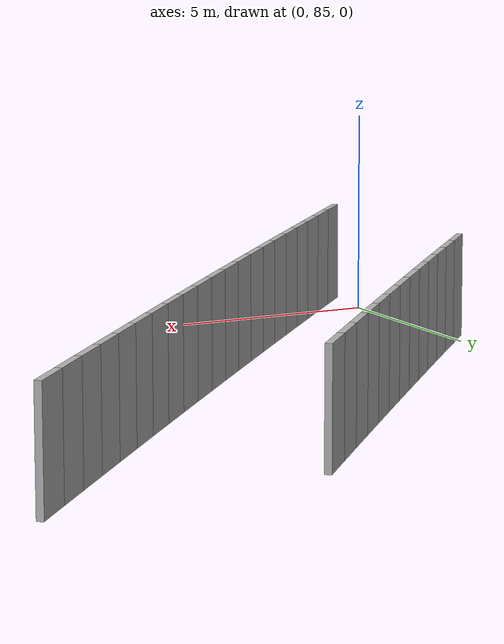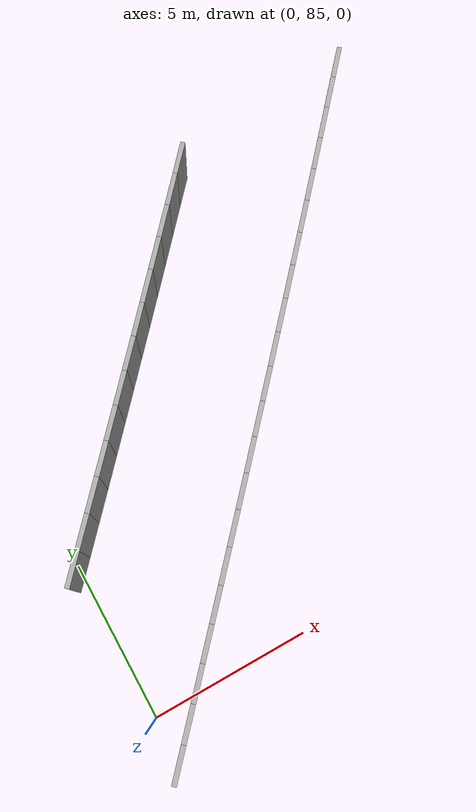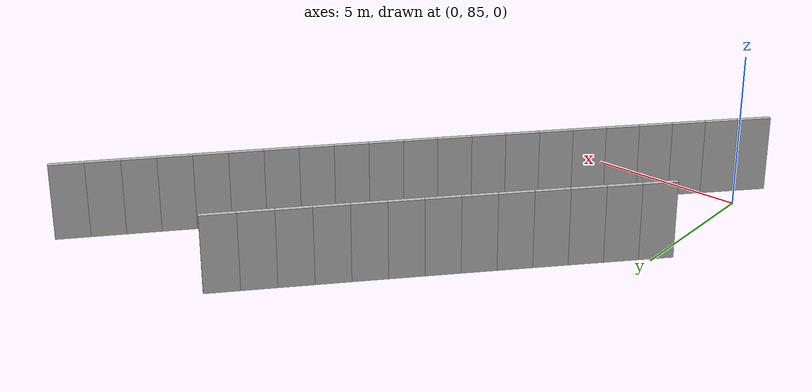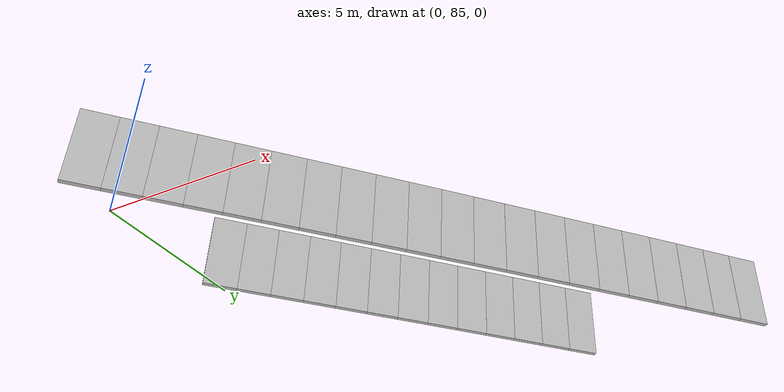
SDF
<?xml version="1.0" ?>
<sdf version="1.6">
  <model name="sps_2004">
    <pose frame="">0 0 0 0 -0 0</pose>
    <static>1</static>
    <self_collide>0</self_collide>
    <allow_auto_disable>0</allow_auto_disable>
    <link name="Wall3430">
      <kinematic>0</kinematic>
      <gravity>1</gravity>
      <self_collide>0</self_collide>
      <collision name="collision">
        <geometry>
          <box>
            <size>1.07602 0.15 2.5</size>
          </box>
        </geometry>
        <pose frame="">0 0 0 0 -0 0</pose>
      </collision>
      <visual name="visual">
        <geometry>
          <box>
            <size>1.07602 0.15 2.5</size>
          </box>
        </geometry>
        <pose frame="">0 0 0 0 -0 0</pose>
        <cast_shadows>1</cast_shadows>
        <transparency>0.0</transparency>
      </visual>
      <pose frame="">0.0122292 89.7161 1.25 0 -0 0.832745</pose>
    </link>
    <link name="Wall3431">
      <kinematic>0</kinematic>
      <gravity>1</gravity>
      <self_collide>0</self_collide>
      <collision name="collision">
        <geometry>
          <box>
            <size>1.07595 0.15 2.5</size>
          </box>
        </geometry>
        <pose frame="">0 0 0 0 -0 0</pose>
      </collision>
      <visual name="visual">
        <geometry>
          <box>
            <size>1.07595 0.15 2.5</size>
          </box>
        </geometry>
        <pose frame="">0 0 0 0 -0 0</pose>
        <cast_shadows>1</cast_shadows>
        <transparency>0.0</transparency>
      </visual>
      <pose frame="">0.73574 90.5125 1.25 0 -0 0.833912</pose>
    </link>
    <link name="Wall3432">
      <kinematic>0</kinematic>
      <gravity>1</gravity>
      <self_collide>0</self_collide>
      <collision name="collision">
        <geometry>
          <box>
            <size>1.07601 0.15 2.5</size>
          </box>
        </geometry>
        <pose frame="">0 0 0 0 -0 0</pose>
      </collision>
      <visual name="visual">
        <geometry>
          <box>
            <size>1.07601 0.15 2.5</size>
          </box>
        </geometry>
        <pose frame="">0 0 0 0 -0 0</pose>
        <cast_shadows>1</cast_shadows>
        <transparency>0.0</transparency>
      </visual>
      <pose frame="">1.45837 91.3097 1.25 0 -0 0.834954</pose>
    </link>
    <link name="Wall3433">
      <kinematic>0</kinematic>
      <gravity>1</gravity>
      <self_collide>0</self_collide>
      <collision name="collision">
        <geometry>
          <box>
            <size>1.07602 0.15 2.5</size>
          </box>
        </geometry>
        <pose frame="">0 0 0 0 -0 0</pose>
      </collision>
      <visual name="visual">
        <geometry>
          <box>
            <size>1.07602 0.15 2.5</size>
          </box>
        </geometry>
        <pose frame="">0 0 0 0 -0 0</pose>
        <cast_shadows>1</cast_shadows>
        <transparency>0.0</transparency>
      </visual>
      <pose frame="">2.18017 92.1077 1.25 0 -0 0.836038</pose>
    </link>
    <link name="Wall3434">
      <kinematic>0</kinematic>
      <gravity>1</gravity>
      <self_collide>0</self_collide>
      <collision name="collision">
        <geometry>
          <box>
            <size>1.07584 0.15 2.5</size>
          </box>
        </geometry>
        <pose frame="">0 0 0 0 -0 0</pose>
      </collision>
      <visual name="visual">
        <geometry>
          <box>
            <size>1.07584 0.15 2.5</size>
          </box>
        </geometry>
        <pose frame="">0 0 0 0 -0 0</pose>
        <cast_shadows>1</cast_shadows>
        <transparency>0.0</transparency>
      </visual>
      <pose frame="">2.90096 92.9065 1.25 0 -0 0.837332</pose>
    </link>
    <link name="Wall3435">
      <kinematic>0</kinematic>
      <gravity>1</gravity>
      <self_collide>0</self_collide>
      <collision name="collision">
        <geometry>
          <box>
            <size>1.07585 0.15 2.5</size>
          </box>
        </geometry>
        <pose frame="">0 0 0 0 -0 0</pose>
      </collision>
      <visual name="visual">
        <geometry>
          <box>
            <size>1.07585 0.15 2.5</size>
          </box>
        </geometry>
        <pose frame="">0 0 0 0 -0 0</pose>
        <cast_shadows>1</cast_shadows>
        <transparency>0.0</transparency>
      </visual>
      <pose frame="">3.62075 93.7061 1.25 0 -0 0.838416</pose>
    </link>
    <link name="Wall3436">
      <kinematic>0</kinematic>
      <gravity>1</gravity>
      <self_collide>0</self_collide>
      <collision name="collision">
        <geometry>
          <box>
            <size>1.07614 0.15 2.5</size>
          </box>
        </geometry>
        <pose frame="">0 0 0 0 -0 0</pose>
      </collision>
      <visual name="visual">
        <geometry>
          <box>
            <size>1.07614 0.15 2.5</size>
          </box>
        </geometry>
        <pose frame="">0 0 0 0 -0 0</pose>
        <cast_shadows>1</cast_shadows>
        <transparency>0.0</transparency>
      </visual>
      <pose frame="">4.33974 94.5066 1.25 0 -0 0.839566</pose>
    </link>
    <link name="Wall3437">
      <kinematic>0</kinematic>
      <gravity>1</gravity>
      <self_collide>0</self_collide>
      <collision name="collision">
        <geometry>
          <box>
            <size>1.07599 0.15 2.5</size>
          </box>
        </geometry>
        <pose frame="">0 0 0 0 -0 0</pose>
      </collision>
      <visual name="visual">
        <geometry>
          <box>
            <size>1.07599 0.15 2.5</size>
          </box>
        </geometry>
        <pose frame="">0 0 0 0 -0 0</pose>
        <cast_shadows>1</cast_shadows>
        <transparency>0.0</transparency>
      </visual>
      <pose frame="">5.05785 95.308 1.25 0 -0 0.840739</pose>
    </link>
    <link name="Wall3438">
      <kinematic>0</kinematic>
      <gravity>1</gravity>
      <self_collide>0</self_collide>
      <collision name="collision">
        <geometry>
          <box>
            <size>1.07558 0.15 2.5</size>
          </box>
        </geometry>
        <pose frame="">0 0 0 0 -0 0</pose>
      </collision>
      <visual name="visual">
        <geometry>
          <box>
            <size>1.07558 0.15 2.5</size>
          </box>
        </geometry>
        <pose frame="">0 0 0 0 -0 0</pose>
        <cast_shadows>1</cast_shadows>
        <transparency>0.0</transparency>
      </visual>
      <pose frame="">5.77486 96.11 1.25 0 -0 0.841845</pose>
    </link>
    <link name="Wall3439">
      <kinematic>0</kinematic>
      <gravity>1</gravity>
      <self_collide>0</self_collide>
      <collision name="collision">
        <geometry>
          <box>
            <size>1.07595 0.15 2.5</size>
          </box>
        </geometry>
        <pose frame="">0 0 0 0 -0 0</pose>
      </collision>
      <visual name="visual">
        <geometry>
          <box>
            <size>1.07595 0.15 2.5</size>
          </box>
        </geometry>
        <pose frame="">0 0 0 0 -0 0</pose>
        <cast_shadows>1</cast_shadows>
        <transparency>0.0</transparency>
      </visual>
      <pose frame="">6.49096 96.9128 1.25 0 -0 0.84299</pose>
    </link>
    <link name="Wall3440">
      <kinematic>0</kinematic>
      <gravity>1</gravity>
      <self_collide>0</self_collide>
      <collision name="collision">
        <geometry>
          <box>
            <size>1.07598 0.15 2.5</size>
          </box>
        </geometry>
        <pose frame="">0 0 0 0 -0 0</pose>
      </collision>
      <visual name="visual">
        <geometry>
          <box>
            <size>1.07598 0.15 2.5</size>
          </box>
        </geometry>
        <pose frame="">0 0 0 0 -0 0</pose>
        <cast_shadows>1</cast_shadows>
        <transparency>0.0</transparency>
      </visual>
      <pose frame="">7.20626 97.7166 1.25 0 -0 0.844154</pose>
    </link>
    <link name="Wall3441">
      <kinematic>0</kinematic>
      <gravity>1</gravity>
      <self_collide>0</self_collide>
      <collision name="collision">
        <geometry>
          <box>
            <size>1.07587 0.15 2.5</size>
          </box>
        </geometry>
        <pose frame="">0 0 0 0 -0 0</pose>
      </collision>
      <visual name="visual">
        <geometry>
          <box>
            <size>1.07587 0.15 2.5</size>
          </box>
        </geometry>
        <pose frame="">0 0 0 0 -0 0</pose>
        <cast_shadows>1</cast_shadows>
        <transparency>0.0</transparency>
      </visual>
      <pose frame="">7.92068 98.5211 1.25 0 -0 0.845125</pose>
    </link>
    <link name="Wall3442">
      <kinematic>0</kinematic>
      <gravity>1</gravity>
      <self_collide>0</self_collide>
      <collision name="collision">
        <geometry>
          <box>
            <size>1.07612 0.15 2.5</size>
          </box>
        </geometry>
        <pose frame="">0 0 0 0 -0 0</pose>
      </collision>
      <visual name="visual">
        <geometry>
          <box>
            <size>1.07612 0.15 2.5</size>
          </box>
        </geometry>
        <pose frame="">0 0 0 0 -0 0</pose>
        <cast_shadows>1</cast_shadows>
        <transparency>0.0</transparency>
      </visual>
      <pose frame="">8.63427 99.3264 1.25 0 -0 0.846316</pose>
    </link>
    <link name="Wall4228">
      <kinematic>0</kinematic>
      <gravity>1</gravity>
      <self_collide>0</self_collide>
      <collision name="collision">
        <geometry>
          <box>
            <size>1.08089 0.15 2.5</size>
          </box>
        </geometry>
        <pose frame="">0 0 0 0 -0 0</pose>
      </collision>
      <visual name="visual">
        <geometry>
          <box>
            <size>1.08089 0.15 2.5</size>
          </box>
        </geometry>
        <pose frame="">0 0 0 0 -0 0</pose>
        <cast_shadows>1</cast_shadows>
        <transparency>0.0</transparency>
      </visual>
      <pose frame="">0.158744 83.7386 1.25 0 -0 0.828055</pose>
    </link>
    <link name="Wall4229">
      <kinematic>0</kinematic>
      <gravity>1</gravity>
      <self_collide>0</self_collide>
      <collision name="collision">
        <geometry>
          <box>
            <size>1.08065 0.15 2.5</size>
          </box>
        </geometry>
        <pose frame="">0 0 0 0 -0 0</pose>
      </collision>
      <visual name="visual">
        <geometry>
          <box>
            <size>1.08065 0.15 2.5</size>
          </box>
        </geometry>
        <pose frame="">0 0 0 0 -0 0</pose>
        <cast_shadows>1</cast_shadows>
        <transparency>0.0</transparency>
      </visual>
      <pose frame="">0.889152 84.5352 1.25 0 -0 0.829383</pose>
    </link>
    <link name="Wall4230">
      <kinematic>0</kinematic>
      <gravity>1</gravity>
      <self_collide>0</self_collide>
      <collision name="collision">
        <geometry>
          <box>
            <size>1.08075 0.15 2.5</size>
          </box>
        </geometry>
        <pose frame="">0 0 0 0 -0 0</pose>
      </collision>
      <visual name="visual">
        <geometry>
          <box>
            <size>1.08075 0.15 2.5</size>
          </box>
        </geometry>
        <pose frame="">0 0 0 0 -0 0</pose>
        <cast_shadows>1</cast_shadows>
        <transparency>0.0</transparency>
      </visual>
      <pose frame="">1.61855 85.3326 1.25 0 -0 0.830459</pose>
    </link>
    <link name="Wall4231">
      <kinematic>0</kinematic>
      <gravity>1</gravity>
      <self_collide>0</self_collide>
      <collision name="collision">
        <geometry>
          <box>
            <size>1.08075 0.15 2.5</size>
          </box>
        </geometry>
        <pose frame="">0 0 0 0 -0 0</pose>
      </collision>
      <visual name="visual">
        <geometry>
          <box>
            <size>1.08075 0.15 2.5</size>
          </box>
        </geometry>
        <pose frame="">0 0 0 0 -0 0</pose>
        <cast_shadows>1</cast_shadows>
        <transparency>0.0</transparency>
      </visual>
      <pose frame="">2.34716 86.1308 1.25 0 -0 0.831458</pose>
    </link>
    <link name="Wall4232">
      <kinematic>0</kinematic>
      <gravity>1</gravity>
      <self_collide>0</self_collide>
      <collision name="collision">
        <geometry>
          <box>
            <size>1.08064 0.15 2.5</size>
          </box>
        </geometry>
        <pose frame="">0 0 0 0 -0 0</pose>
      </collision>
      <visual name="visual">
        <geometry>
          <box>
            <size>1.08064 0.15 2.5</size>
          </box>
        </geometry>
        <pose frame="">0 0 0 0 -0 0</pose>
        <cast_shadows>1</cast_shadows>
        <transparency>0.0</transparency>
      </visual>
      <pose frame="">3.07485 86.9298 1.25 0 -0 0.832662</pose>
    </link>
    <link name="Wall4233">
      <kinematic>0</kinematic>
      <gravity>1</gravity>
      <self_collide>0</self_collide>
      <collision name="collision">
        <geometry>
          <box>
            <size>1.08062 0.15 2.5</size>
          </box>
        </geometry>
        <pose frame="">0 0 0 0 -0 0</pose>
      </collision>
      <visual name="visual">
        <geometry>
          <box>
            <size>1.08062 0.15 2.5</size>
          </box>
        </geometry>
        <pose frame="">0 0 0 0 -0 0</pose>
        <cast_shadows>1</cast_shadows>
        <transparency>0.0</transparency>
      </visual>
      <pose frame="">3.80154 87.7296 1.25 0 -0 0.833863</pose>
    </link>
    <link name="Wall4234">
      <kinematic>0</kinematic>
      <gravity>1</gravity>
      <self_collide>0</self_collide>
      <collision name="collision">
        <geometry>
          <box>
            <size>1.08081 0.15 2.5</size>
          </box>
        </geometry>
        <pose frame="">0 0 0 0 -0 0</pose>
      </collision>
      <visual name="visual">
        <geometry>
          <box>
            <size>1.08081 0.15 2.5</size>
          </box>
        </geometry>
        <pose frame="">0 0 0 0 -0 0</pose>
        <cast_shadows>1</cast_shadows>
        <transparency>0.0</transparency>
      </visual>
      <pose frame="">4.52734 88.5303 1.25 0 -0 0.835014</pose>
    </link>
    <link name="Wall4235">
      <kinematic>0</kinematic>
      <gravity>1</gravity>
      <self_collide>0</self_collide>
      <collision name="collision">
        <geometry>
          <box>
            <size>1.08082 0.15 2.5</size>
          </box>
        </geometry>
        <pose frame="">0 0 0 0 -0 0</pose>
      </collision>
      <visual name="visual">
        <geometry>
          <box>
            <size>1.08082 0.15 2.5</size>
          </box>
        </geometry>
        <pose frame="">0 0 0 0 -0 0</pose>
        <cast_shadows>1</cast_shadows>
        <transparency>0.0</transparency>
      </visual>
      <pose frame="">5.25234 89.3319 1.25 0 -0 0.836013</pose>
    </link>
    <link name="Wall4236">
      <kinematic>0</kinematic>
      <gravity>1</gravity>
      <self_collide>0</self_collide>
      <collision name="collision">
        <geometry>
          <box>
            <size>1.08068 0.15 2.5</size>
          </box>
        </geometry>
        <pose frame="">0 0 0 0 -0 0</pose>
      </collision>
      <visual name="visual">
        <geometry>
          <box>
            <size>1.08068 0.15 2.5</size>
          </box>
        </geometry>
        <pose frame="">0 0 0 0 -0 0</pose>
        <cast_shadows>1</cast_shadows>
        <transparency>0.0</transparency>
      </visual>
      <pose frame="">5.97634 90.1343 1.25 0 -0 0.837419</pose>
    </link>
    <link name="Wall4237">
      <kinematic>0</kinematic>
      <gravity>1</gravity>
      <self_collide>0</self_collide>
      <collision name="collision">
        <geometry>
          <box>
            <size>1.08069 0.15 2.5</size>
          </box>
        </geometry>
        <pose frame="">0 0 0 0 -0 0</pose>
      </collision>
      <visual name="visual">
        <geometry>
          <box>
            <size>1.08069 0.15 2.5</size>
          </box>
        </geometry>
        <pose frame="">0 0 0 0 -0 0</pose>
        <cast_shadows>1</cast_shadows>
        <transparency>0.0</transparency>
      </visual>
      <pose frame="">6.69933 90.9375 1.25 0 -0 0.838418</pose>
    </link>
    <link name="Wall4238">
      <kinematic>0</kinematic>
      <gravity>1</gravity>
      <self_collide>0</self_collide>
      <collision name="collision">
        <geometry>
          <box>
            <size>1.08089 0.15 2.5</size>
          </box>
        </geometry>
        <pose frame="">0 0 0 0 -0 0</pose>
      </collision>
      <visual name="visual">
        <geometry>
          <box>
            <size>1.08089 0.15 2.5</size>
          </box>
        </geometry>
        <pose frame="">0 0 0 0 -0 0</pose>
        <cast_shadows>1</cast_shadows>
        <transparency>0.0</transparency>
      </visual>
      <pose frame="">7.42153 91.7416 1.25 0 -0 0.839568</pose>
    </link>
    <link name="Wall4239">
      <kinematic>0</kinematic>
      <gravity>1</gravity>
      <self_collide>0</self_collide>
      <collision name="collision">
        <geometry>
          <box>
            <size>1.08074 0.15 2.5</size>
          </box>
        </geometry>
        <pose frame="">0 0 0 0 -0 0</pose>
      </collision>
      <visual name="visual">
        <geometry>
          <box>
            <size>1.08074 0.15 2.5</size>
          </box>
        </geometry>
        <pose frame="">0 0 0 0 -0 0</pose>
        <cast_shadows>1</cast_shadows>
        <transparency>0.0</transparency>
      </visual>
      <pose frame="">8.14284 92.5465 1.25 0 -0 0.840655</pose>
    </link>
    <link name="Wall4240">
      <kinematic>0</kinematic>
      <gravity>1</gravity>
      <self_collide>0</self_collide>
      <collision name="collision">
        <geometry>
          <box>
            <size>1.08059 0.15 2.5</size>
          </box>
        </geometry>
        <pose frame="">0 0 0 0 -0 0</pose>
      </collision>
      <visual name="visual">
        <geometry>
          <box>
            <size>1.08059 0.15 2.5</size>
          </box>
        </geometry>
        <pose frame="">0 0 0 0 -0 0</pose>
        <cast_shadows>1</cast_shadows>
        <transparency>0.0</transparency>
      </visual>
      <pose frame="">8.86315 93.3521 1.25 0 -0 0.841823</pose>
    </link>
    <link name="Wall4241">
      <kinematic>0</kinematic>
      <gravity>1</gravity>
      <self_collide>0</self_collide>
      <collision name="collision">
        <geometry>
          <box>
            <size>1.0807 0.15 2.5</size>
          </box>
        </geometry>
        <pose frame="">0 0 0 0 -0 0</pose>
      </collision>
      <visual name="visual">
        <geometry>
          <box>
            <size>1.0807 0.15 2.5</size>
          </box>
        </geometry>
        <pose frame="">0 0 0 0 -0 0</pose>
        <cast_shadows>1</cast_shadows>
        <transparency>0.0</transparency>
      </visual>
      <pose frame="">9.58254 94.1585 1.25 0 -0 0.842897</pose>
    </link>
    <link name="Wall4242">
      <kinematic>0</kinematic>
      <gravity>1</gravity>
      <self_collide>0</self_collide>
      <collision name="collision">
        <geometry>
          <box>
            <size>1.0809 0.15 2.5</size>
          </box>
        </geometry>
        <pose frame="">0 0 0 0 -0 0</pose>
      </collision>
      <visual name="visual">
        <geometry>
          <box>
            <size>1.0809 0.15 2.5</size>
          </box>
        </geometry>
        <pose frame="">0 0 0 0 -0 0</pose>
        <cast_shadows>1</cast_shadows>
        <transparency>0.0</transparency>
      </visual>
      <pose frame="">10.3011 94.9658 1.25 0 -0 0.844046</pose>
    </link>
    <link name="Wall4243">
      <kinematic>0</kinematic>
      <gravity>1</gravity>
      <self_collide>0</self_collide>
      <collision name="collision">
        <geometry>
          <box>
            <size>1.08025 0.15 2.5</size>
          </box>
        </geometry>
        <pose frame="">0 0 0 0 -0 0</pose>
      </collision>
      <visual name="visual">
        <geometry>
          <box>
            <size>1.08025 0.15 2.5</size>
          </box>
        </geometry>
        <pose frame="">0 0 0 0 -0 0</pose>
        <cast_shadows>1</cast_shadows>
        <transparency>0.0</transparency>
      </visual>
      <pose frame="">11.0186 95.7738 1.25 0 -0 0.845243</pose>
    </link>
    <link name="Wall4244">
      <kinematic>0</kinematic>
      <gravity>1</gravity>
      <self_collide>0</self_collide>
      <collision name="collision">
        <geometry>
          <box>
            <size>1.08068 0.15 2.5</size>
          </box>
        </geometry>
        <pose frame="">0 0 0 0 -0 0</pose>
      </collision>
      <visual name="visual">
        <geometry>
          <box>
            <size>1.08068 0.15 2.5</size>
          </box>
        </geometry>
        <pose frame="">0 0 0 0 -0 0</pose>
        <cast_shadows>1</cast_shadows>
        <transparency>0.0</transparency>
      </visual>
      <pose frame="">11.735 96.5826 1.25 0 -0 0.846579</pose>
    </link>
    <link name="Wall4245">
      <kinematic>0</kinematic>
      <gravity>1</gravity>
      <self_collide>0</self_collide>
      <collision name="collision">
        <geometry>
          <box>
            <size>1.08082 0.15 2.5</size>
          </box>
        </geometry>
        <pose frame="">0 0 0 0 -0 0</pose>
      </collision>
      <visual name="visual">
        <geometry>
          <box>
            <size>1.08082 0.15 2.5</size>
          </box>
        </geometry>
        <pose frame="">0 0 0 0 -0 0</pose>
        <cast_shadows>1</cast_shadows>
        <transparency>0.0</transparency>
      </visual>
      <pose frame="">12.4507 97.3924 1.25 0 -0 0.847451</pose>
    </link>
    <link name="Wall4246">
      <kinematic>0</kinematic>
      <gravity>1</gravity>
      <self_collide>0</self_collide>
      <collision name="collision">
        <geometry>
          <box>
            <size>1.08064 0.15 2.5</size>
          </box>
        </geometry>
        <pose frame="">0 0 0 0 -0 0</pose>
      </collision>
      <visual name="visual">
        <geometry>
          <box>
            <size>1.08064 0.15 2.5</size>
          </box>
        </geometry>
        <pose frame="">0 0 0 0 -0 0</pose>
        <cast_shadows>1</cast_shadows>
        <transparency>0.0</transparency>
      </visual>
      <pose frame="">13.1656 98.2029 1.25 0 -0 0.848502</pose>
    </link>
    <link name="Wall4247">
      <kinematic>0</kinematic>
      <gravity>1</gravity>
      <self_collide>0</self_collide>
      <collision name="collision">
        <geometry>
          <box>
            <size>1.08073 0.15 2.5</size>
          </box>
        </geometry>
        <pose frame="">0 0 0 0 -0 0</pose>
      </collision>
      <visual name="visual">
        <geometry>
          <box>
            <size>1.08073 0.15 2.5</size>
          </box>
        </geometry>
        <pose frame="">0 0 0 0 -0 0</pose>
        <cast_shadows>1</cast_shadows>
        <transparency>0.0</transparency>
      </visual>
      <pose frame="">13.8795 99.0142 1.25 0 -0 0.849857</pose>
    </link>
    <link name="Wall4248">
      <kinematic>0</kinematic>
      <gravity>1</gravity>
      <self_collide>0</self_collide>
      <collision name="collision">
        <geometry>
          <box>
            <size>1.0808 0.15 2.5</size>
          </box>
        </geometry>
        <pose frame="">0 0 0 0 -0 0</pose>
      </collision>
      <visual name="visual">
        <geometry>
          <box>
            <size>1.0808 0.15 2.5</size>
          </box>
        </geometry>
        <pose frame="">0 0 0 0 -0 0</pose>
        <cast_shadows>1</cast_shadows>
        <transparency>0.0</transparency>
      </visual>
      <pose frame="">14.5926 99.8264 1.25 0 -0 0.850814</pose>
    </link>
  </model>
</sdf>
